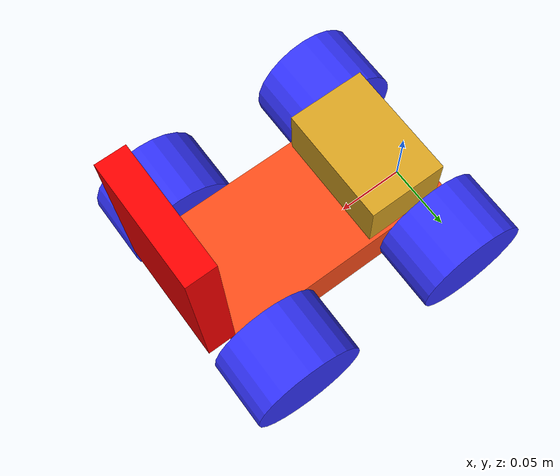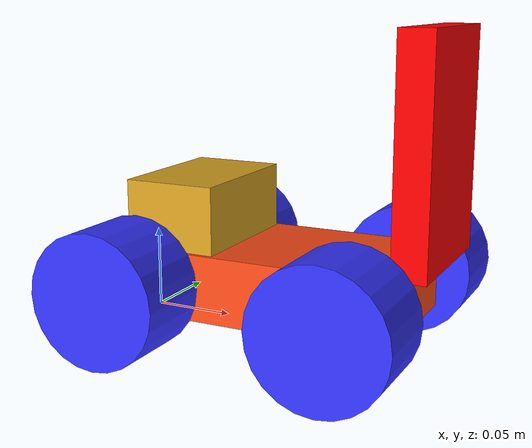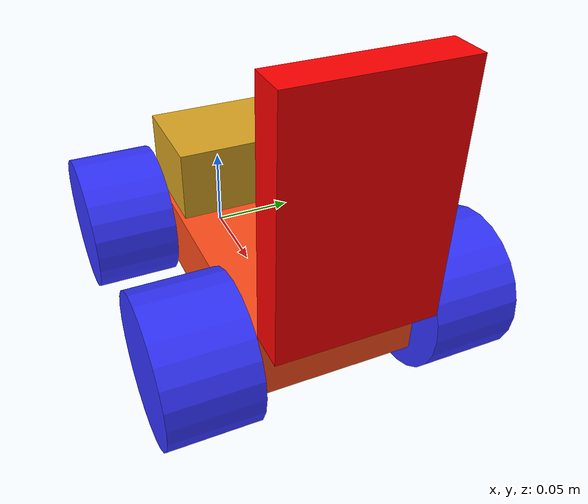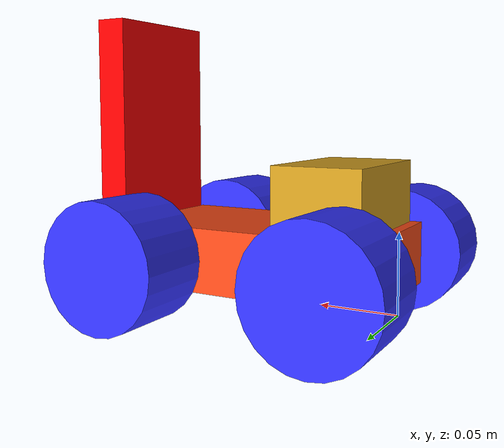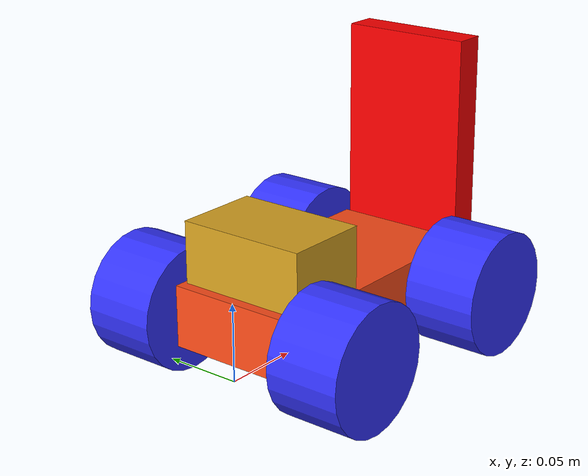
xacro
<?xml version="1.0"?>
<robot xmlns:xacro="http://www.ros.org/wiki/xacro" >

    <xacro:include filename="inertial_macros.xacro"/>

    <material name="white">
        <color rgba="1 1 1 1" />
    </material>

    <material name="orange">
        <color rgba="1 0.3 0.1 1"/>
    </material>

    <material name="blue">
        <color rgba="0.2 0.2 1 1"/>
    </material>

    <material name="black">
        <color rgba="0 0 0 1"/>
    </material>

    <material name="red">
        <color rgba="1 0 0 1"/>
    </material>

    <material name="golden rod">
        <color rgba="0.85 0.64 0.13 1"/>
    </material>

    <material name="orange red">
        <color rgba="1 0.27 0 1"/>
    </material>

    <!-- BASE LINK -->

    <link name="base_link">

    </link>

    <!-- CHASSIS LINK -->

    <joint name="chassis_joint" type="fixed">
        <parent link="base_link"/>
        <child link="chassis"/>
        <origin xyz="0.085 0 0.01"/>
    </joint>

    <link name="chassis">
        <visual>
            <origin xyz="0 0 0.02"/>
            <geometry>
                <box size="0.17 0.09 0.04"/>
            </geometry>
            <material name="orange"/>
        </visual>
        <collision>
            <origin xyz="0 0 0.02"/>
            <geometry>
                <box size="0.17 0.09 0.04"/>
            </geometry>
        </collision>
        <xacro:inertial_box mass="1" x="0.17" y="0.09" z="0.04">
            <origin xyz="0 0 0.02" rpy="0 0 0"/>
        </xacro:inertial_box>
    </link>

    <gazebo reference="chassis">
        <material>Gazebo/Orange</material>
    </gazebo>

    <!-- LIDAR HOLDER -->

    <joint name="lidar_holder_joint" type="fixed">
        <parent link="chassis"/>
        <child link="lidar_holder"/>
        <origin xyz="0.095 0 0.04"/>
    </joint>

    <link name="lidar_holder">
        <visual>
            <origin xyz="0 0 0.065"/>
            <geometry>
                <box size="0.02 0.085 0.13"/>
            </geometry>
            <material name="red"/>
        </visual>
        <collision>
            <origin xyz="0 0 0.065"/>
            <geometry>
                <box size="0.02 0.085 0.13"/>
            </geometry>
        </collision>
        <xacro:inertial_box mass="0.2" x="0.02" y="0.085" z="0.13">
            <origin xyz="0 0 0.065" rpy="0 0 0"/>
        </xacro:inertial_box>

    </link>

    <gazebo reference="lidar_holder">
        <material>Gazebo/Red</material>
    </gazebo>

    <!-- UP BOARD -->

    <joint name="up_board_joint" type="fixed">
        <parent link="chassis"/>
        <child link="up_board"/>
        <origin xyz="-0.05 0 0.04"/>
    </joint>

    <link name="up_board">
        <visual>
            <origin xyz="0 0 0.02"/>
            <geometry>
                <box size="0.056 0.085 0.04"/>
            </geometry>
            <material name="golden rod"/>
        </visual>
        <collision>
            <origin xyz="0 0 0.02"/>
            <geometry>
                <box size="0.056 0.085 0.04"/>
            </geometry>
        </collision>
        <xacro:inertial_box mass="0.2" x="0.056" y="0.085" z="0.04">
            <origin xyz="0 0 0.02" rpy="0 0 0"/>
        </xacro:inertial_box>
    </link>

    <gazebo reference="up_board">
        <material>Gazebo/Gold</material>
    </gazebo>

    <!-- FRONT LEFT WHEEL LINK -->

    <joint name="front_left_wheel_joint" type="continuous">
        <parent link="chassis"/>
        <child link="front_left_wheel"/>
        <origin xyz="0.065 0.07 0.02" rpy="-${pi/2} 0 0" />
        <axis xyz="0 0 1"/>
    </joint>

    <link name="front_left_wheel">
        <visual>
            <geometry>
                <cylinder radius="0.04" length="0.048" n="50"/>
            </geometry>
            <material name="blue"/>
        </visual>
        <collision>
            <geometry>
                <cylinder radius="0.04" length="0.048" n="50"/>
            </geometry>
        </collision>
        <xacro:inertial_cylinder mass="2" length="0.048" radius="0.04">
            <origin xyz="0 0 0" rpy="0 0 0"/>
        </xacro:inertial_cylinder>
    </link>

    <gazebo reference="front_left_wheel">
        <material>Gazebo/Blue</material>
    </gazebo>

    <!-- FRONT RIGHT WHEEL LINK -->

    <joint name="front_right_wheel_joint" type="continuous">
        <parent link="chassis"/>
        <child link="front_right_wheel"/>
        <origin xyz="0.065 -0.07 0.02" rpy="${pi/2} 0 0" />
        <axis xyz="0 0 -1"/>
    </joint>

    <link name="front_right_wheel">
        <visual>
            <geometry>
                <cylinder radius="0.04" length="0.048" n="50"/>
            </geometry>
            <material name="blue"/>
        </visual>
        <collision>
            <geometry>
                <cylinder radius="0.04" length="0.048" n="50"/>
            </geometry>
        </collision>
        <xacro:inertial_cylinder mass="2" length="0.048" radius="0.04">
            <origin xyz="0 0 0" rpy="0 0 0"/>
        </xacro:inertial_cylinder>
    </link>

    <gazebo reference="front_right_wheel">
        <material>Gazebo/Blue</material>
    </gazebo>

    <!-- BACK LEFT WHEEL LINK -->

    <joint name="back_left_wheel_joint" type="continuous">
        <parent link="chassis"/>
        <child link="back_left_wheel"/>
        <origin xyz="-0.07 0.07 0.02" rpy="-${pi/2} 0 0" />
        <axis xyz="0 0 1"/>
    </joint>

    <link name="back_left_wheel">
        <visual>
            <geometry>
                <cylinder radius="0.04" length="0.048" n="50"/>
            </geometry>
            <material name="blue"/>
        </visual>
        <collision>
            <geometry>
                <cylinder radius="0.04" length="0.048" n="50"/>
            </geometry>
        </collision>
        <xacro:inertial_cylinder mass="2" length="0.048" radius="0.04">
            <origin xyz="0 0 0" rpy="0 0 0"/>
        </xacro:inertial_cylinder>
    </link>

    <gazebo reference="back_left_wheel">
        <material>Gazebo/Blue</material>
    </gazebo>

    <!-- BACK RIGHT WHEEL LINK -->

    <joint name="back_right_wheel_joint" type="continuous">
        <parent link="chassis"/>
        <child link="back_right_wheel"/>
        <origin xyz="-0.07 -0.07 0.02" rpy="${pi/2} 0 0" />
        <axis xyz="0 0 -1"/>
    </joint>

    <link name="back_right_wheel">
        <visual>
            <geometry>
                <cylinder radius="0.04" length="0.048" n="50"/>
            </geometry>
            <material name="blue"/>
        </visual>
        <collision>
            <geometry>
                <cylinder radius="0.04" length="0.048" n="50"/>
            </geometry>
        </collision>
        <xacro:inertial_cylinder mass="2" length="0.048" radius="0.04">
            <origin xyz="0 0 0" rpy="0 0 0"/>
        </xacro:inertial_cylinder>
    </link>

    <gazebo reference="back_right_wheel">
        <material>Gazebo/Blue</material>
    </gazebo>

</robot>
